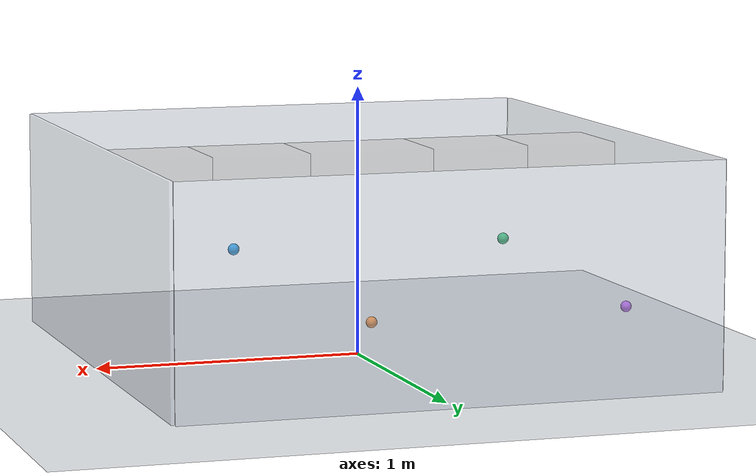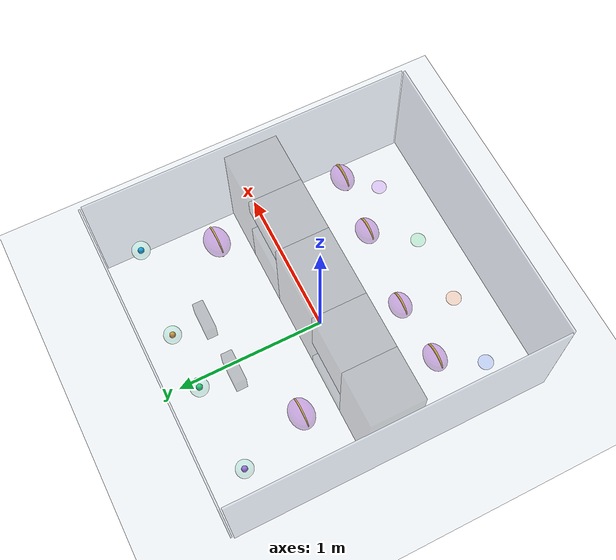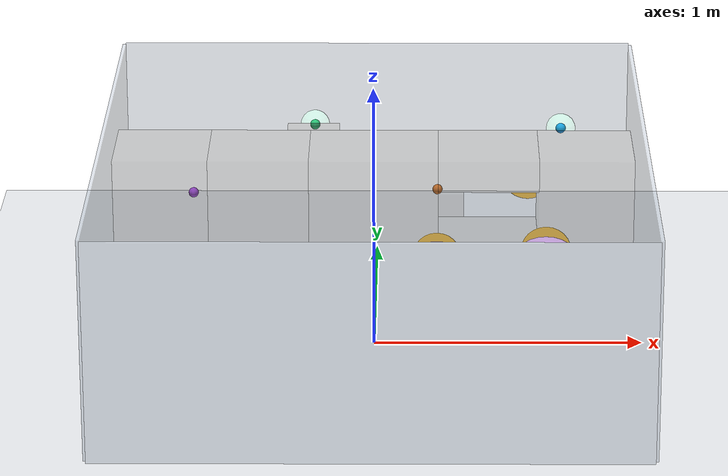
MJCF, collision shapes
<mujoco model="crazyflies3_hard_3d">
  <compiler angle="radian" autolimits="true" inertiafromgeom="false" meshdir="../../external/mujoco_menagerie/bitcraze_crazyflie_2/assets"/>

  <option timestep="0.025" gravity="0 0 -9.81" integrator="Euler" density="1.225" viscosity="1.8e-5"/>
  <statistic center="0 0 0.42" extent="1.55"/>

  <default>
    <geom contype="0" conaffinity="0"/>
    <site type="sphere" size="0.035"/>
    <default class="cf2">
      <default class="visual">
        <geom group="2" type="mesh" contype="0" conaffinity="0"/>
      </default>
      <default class="collision">
        <geom group="3" type="mesh"/>
      </default>
      <site group="5"/>
      <motor ctrllimited="true"/>
    </default>
  </default>

  <asset>
    <texture name="sky" type="skybox" builtin="flat" rgb1="1 1 1" width="64" height="64"/>
    <texture name="floor_tex" type="2d" builtin="checker" width="512" height="512"
      rgb1="0.965 0.970 0.978" rgb2="0.890 0.910 0.930"/>
    <material name="floor_mat" texture="floor_tex" texrepeat="9 9" texuniform="true" reflectance="0.06"/>
    <material name="wall_mat" rgba="0.72 0.77 0.84 0.38" specular="0.12" shininess="0.25"/>
    <material name="tunnel_wall_mat" rgba="0.16 0.18 0.20 0.28" specular="0.10" shininess="0.22"/>
    <material name="air_hazard_mat" rgba="0.52 0.10 0.74 0.34" specular="0.18" shininess="0.35"/>
    <material name="air_hazard_core_mat" rgba="0.54 0.08 0.74 0.72" specular="0.12" shininess="0.25"/>
    <material name="hazard_ring_mat" rgba="1.00 0.76 0.18 0.82" specular="0.16" shininess="0.24"/>
    <material name="goal1_mat" rgba="0.10 0.62 0.96 0.95" specular="0.20" shininess="0.40"/>
    <material name="goal2_mat" rgba="0.96 0.54 0.20 0.95" specular="0.20" shininess="0.40"/>
    <material name="goal3_mat" rgba="0.18 0.78 0.46 0.95" specular="0.20" shininess="0.40"/>
    <material name="goal4_mat" rgba="0.72 0.34 0.96 0.95" specular="0.20" shininess="0.40"/>
    <material name="goal_zone_mat" rgba="0.20 0.84 0.62 0.18"/>
    <material name="start1_mat" rgba="0.34 0.52 0.96 0.28"/>
    <material name="start2_mat" rgba="0.98 0.56 0.30 0.28"/>
    <material name="start3_mat" rgba="0.34 0.84 0.54 0.28"/>
    <material name="start4_mat" rgba="0.72 0.38 0.96 0.28"/>

    <material name="polished_plastic" rgba="0.631 0.659 0.678 1"/>
    <material name="polished_gold" rgba="0.969 0.878 0.6 1"/>
    <material name="medium_gloss_plastic" rgba="0.109 0.184 0.0 1"/>
    <material name="propeller_plastic" rgba="0.792 0.820 0.933 1"/>
    <material name="white" rgba="1 1 1 1"/>
    <material name="body_frame_plastic" rgba="0.102 0.102 0.102 1"/>
    <material name="burnished_chrome" rgba="0.898 0.898 0.898 1"/>

    <mesh file="cf2_0.obj"/>
    <mesh file="cf2_1.obj"/>
    <mesh file="cf2_2.obj"/>
    <mesh file="cf2_3.obj"/>
    <mesh file="cf2_4.obj"/>
    <mesh file="cf2_5.obj"/>
    <mesh file="cf2_6.obj"/>
    <mesh file="cf2_collision_0.obj"/>
    <mesh file="cf2_collision_1.obj"/>
    <mesh file="cf2_collision_2.obj"/>
    <mesh file="cf2_collision_3.obj"/>
    <mesh file="cf2_collision_4.obj"/>
    <mesh file="cf2_collision_5.obj"/>
    <mesh file="cf2_collision_6.obj"/>
    <mesh file="cf2_collision_7.obj"/>
    <mesh file="cf2_collision_8.obj"/>
    <mesh file="cf2_collision_9.obj"/>
    <mesh file="cf2_collision_10.obj"/>
    <mesh file="cf2_collision_11.obj"/>
    <mesh file="cf2_collision_12.obj"/>
    <mesh file="cf2_collision_13.obj"/>
    <mesh file="cf2_collision_14.obj"/>
    <mesh file="cf2_collision_15.obj"/>
    <mesh file="cf2_collision_16.obj"/>
    <mesh file="cf2_collision_17.obj"/>
    <mesh file="cf2_collision_18.obj"/>
    <mesh file="cf2_collision_19.obj"/>
    <mesh file="cf2_collision_20.obj"/>
    <mesh file="cf2_collision_21.obj"/>
    <mesh file="cf2_collision_22.obj"/>
    <mesh file="cf2_collision_23.obj"/>
    <mesh file="cf2_collision_24.obj"/>
    <mesh file="cf2_collision_25.obj"/>
    <mesh file="cf2_collision_26.obj"/>
    <mesh file="cf2_collision_27.obj"/>
    <mesh file="cf2_collision_28.obj"/>
    <mesh file="cf2_collision_29.obj"/>
    <mesh file="cf2_collision_30.obj"/>
    <mesh file="cf2_collision_31.obj"/>
  </asset>

  <worldbody>
    <light name="key" pos="-0.75 -1.10 1.35" diffuse="0.95 0.95 0.95" specular="0.22 0.22 0.22"/>
    <light name="fill" pos="0.85 0.90 0.95" diffuse="0.48 0.50 0.52" specular="0.06 0.06 0.06"/>

    <camera name="angled" mode="fixed" pos="1.15 -1.70 0.98" xyaxes="0.82 0.57 0 -0.30 0.43 0.85"/>
    <camera name="side" mode="fixed" pos="0 -1.85 0.58" xyaxes="1 0 0 0 0.30 0.95"/>
    <camera name="top_down" mode="fixed" pos="0 -0.01 2.10" xyaxes="1 0 0 0 1 0"/>

    <geom name="floor" type="plane" pos="0 0 0" size="1.55 1.65 0.015" material="floor_mat"/>
    <geom name="arena_back" type="box" pos="0 1.095 0.41" size="0.99 0.006 0.41" material="wall_mat"/>
    <geom name="arena_front" type="box" pos="0 -1.095 0.41" size="0.99 0.006 0.41" material="wall_mat"/>
    <geom name="arena_left" type="box" pos="-0.995 0 0.41" size="0.006 1.08 0.41" material="wall_mat"/>
    <geom name="arena_right" type="box" pos="0.995 0 0.41" size="0.006 1.08 0.41" material="wall_mat"/>

    <geom name="tunnel_wall_left" type="box" pos="-0.776924 0 0.43" size="0.173076 0.175 0.35" material="tunnel_wall_mat"/>
    <geom name="tunnel_wall_middle" type="box" pos="0 0 0.43" size="0.236152 0.175 0.35" material="tunnel_wall_mat"/>
    <geom name="tunnel_wall_right" type="box" pos="0.776924 0 0.43" size="0.173076 0.175 0.35" material="tunnel_wall_mat"/>
    <geom name="tunnel_wall_lower_left_bottom" type="box" pos="-0.42 0 0.123431" size="0.183848 0.175 0.043431" material="tunnel_wall_mat"/>
    <geom name="tunnel_wall_lower_left_top" type="box" pos="-0.42 0 0.586569" size="0.183848 0.175 0.193431" material="tunnel_wall_mat"/>
    <geom name="tunnel_wall_upper_right_bottom" type="box" pos="0.42 0 0.258431" size="0.183848 0.175 0.178431" material="tunnel_wall_mat"/>
    <geom name="tunnel_wall_upper_right_top" type="box" pos="0.42 0 0.721569" size="0.183848 0.175 0.058431" material="tunnel_wall_mat"/>
    <geom name="goal_turn_wall_d2" type="box" pos="0.24 0.68 0.28" size="0.10 0.035 0.07" material="tunnel_wall_mat"/>
    <geom name="goal_turn_wall_d3" type="box" pos="-0.24 0.68 0.55" size="0.10 0.035 0.07" material="tunnel_wall_mat"/>

    <geom name="air_hazard_low_outer_approach" type="ellipsoid" pos="-0.62 -0.47 0.28" size="0.095 0.070 0.055" material="air_hazard_mat"/>
    <geom name="air_hazard_low_core_approach" type="ellipsoid" pos="-0.62 -0.47 0.28" size="0.052 0.039 0.030" material="air_hazard_core_mat"/>
    <geom name="air_hazard_low_ring_approach" type="cylinder" pos="-0.62 -0.47 0.28" size="0.090 0.0027" euler="1.5707963268 0 0" material="hazard_ring_mat"/>
    <geom name="air_hazard_low_outer_gate" type="ellipsoid" pos="-0.23 -0.44 0.31" size="0.090 0.070 0.055" material="air_hazard_mat"/>
    <geom name="air_hazard_low_core_gate" type="ellipsoid" pos="-0.23 -0.44 0.31" size="0.050 0.039 0.030" material="air_hazard_core_mat"/>
    <geom name="air_hazard_low_ring_gate" type="cylinder" pos="-0.23 -0.44 0.31" size="0.085 0.0027" euler="1.5707963268 0 0" material="hazard_ring_mat"/>
    <geom name="air_hazard_high_outer_gate" type="ellipsoid" pos="0.23 -0.44 0.52" size="0.090 0.070 0.055" material="air_hazard_mat"/>
    <geom name="air_hazard_high_core_gate" type="ellipsoid" pos="0.23 -0.44 0.52" size="0.050 0.039 0.030" material="air_hazard_core_mat"/>
    <geom name="air_hazard_high_ring_gate" type="cylinder" pos="0.23 -0.44 0.52" size="0.085 0.0027" euler="1.5707963268 0 0" material="hazard_ring_mat"/>
    <geom name="air_hazard_high_outer_approach" type="ellipsoid" pos="0.62 -0.47 0.55" size="0.095 0.070 0.055" material="air_hazard_mat"/>
    <geom name="air_hazard_high_core_approach" type="ellipsoid" pos="0.62 -0.47 0.55" size="0.052 0.039 0.030" material="air_hazard_core_mat"/>
    <geom name="air_hazard_high_ring_approach" type="cylinder" pos="0.62 -0.47 0.55" size="0.090 0.0027" euler="1.5707963268 0 0" material="hazard_ring_mat"/>
    <geom name="air_hazard_low_outer_exit" type="ellipsoid" pos="-0.58 0.42 0.31" size="0.105 0.080 0.060" material="air_hazard_mat"/>
    <geom name="air_hazard_low_core_exit" type="ellipsoid" pos="-0.58 0.42 0.31" size="0.058 0.044 0.033" material="air_hazard_core_mat"/>
    <geom name="air_hazard_low_ring_exit" type="cylinder" pos="-0.58 0.42 0.31" size="0.100 0.0027" euler="1.5707963268 0 0" material="hazard_ring_mat"/>
    <geom name="air_hazard_high_outer_exit" type="ellipsoid" pos="0.58 0.42 0.52" size="0.105 0.080 0.060" material="air_hazard_mat"/>
    <geom name="air_hazard_high_core_exit" type="ellipsoid" pos="0.58 0.42 0.52" size="0.058 0.044 0.033" material="air_hazard_core_mat"/>
    <geom name="air_hazard_high_ring_exit" type="cylinder" pos="0.58 0.42 0.52" size="0.100 0.0027" euler="1.5707963268 0 0" material="hazard_ring_mat"/>

    <geom name="start_d1" type="cylinder" pos="-0.72 -0.82 0.0021" size="0.051 0.0021" material="start1_mat"/>
    <geom name="start_d2" type="cylinder" pos="-0.24 -0.86 0.0021" size="0.051 0.0021" material="start2_mat"/>
    <geom name="start_d3" type="cylinder" pos="0.24 -0.86 0.0021" size="0.051 0.0021" material="start3_mat"/>
    <geom name="start_d4" type="cylinder" pos="0.72 -0.82 0.0021" size="0.051 0.0021" material="start4_mat"/>

    <geom name="goal_d1_zone" type="ellipsoid" pos="0.72 0.86 0.55" size="0.057 0.057 0.057" material="goal_zone_mat"/>
    <geom name="goal_d1_core" type="sphere" pos="0.72 0.86 0.55" size="0.0195" material="goal1_mat"/>
    <geom name="goal_d2_zone" type="ellipsoid" pos="0.24 0.90 0.28" size="0.057 0.057 0.057" material="goal_zone_mat"/>
    <geom name="goal_d2_core" type="sphere" pos="0.24 0.90 0.28" size="0.0195" material="goal2_mat"/>
    <geom name="goal_d3_zone" type="ellipsoid" pos="-0.24 0.90 0.55" size="0.057 0.057 0.057" material="goal_zone_mat"/>
    <geom name="goal_d3_core" type="sphere" pos="-0.24 0.90 0.55" size="0.0195" material="goal3_mat"/>
    <geom name="goal_d4_zone" type="ellipsoid" pos="-0.72 0.86 0.28" size="0.057 0.057 0.057" material="goal_zone_mat"/>
    <geom name="goal_d4_core" type="sphere" pos="-0.72 0.86 0.28" size="0.0195" material="goal4_mat"/>

    <body name="cf1" pos="-0.72 -0.82 0.14" childclass="cf2">
      <freejoint name="cf1_free"/>
      <inertial pos="0 0 0" mass="0.027" diaginertia="2.3951e-5 2.3951e-5 3.2347e-5"/>
      <geom mesh="cf2_0" material="propeller_plastic" class="visual"/><geom mesh="cf2_1" material="medium_gloss_plastic" class="visual"/><geom mesh="cf2_2" material="polished_gold" class="visual"/><geom mesh="cf2_3" material="polished_plastic" class="visual"/><geom mesh="cf2_4" material="burnished_chrome" class="visual"/><geom mesh="cf2_5" material="body_frame_plastic" class="visual"/><geom mesh="cf2_6" material="white" class="visual"/>
      <geom mesh="cf2_collision_0" class="collision"/><geom mesh="cf2_collision_1" class="collision"/><geom mesh="cf2_collision_2" class="collision"/><geom mesh="cf2_collision_3" class="collision"/><geom mesh="cf2_collision_4" class="collision"/><geom mesh="cf2_collision_5" class="collision"/><geom mesh="cf2_collision_6" class="collision"/><geom mesh="cf2_collision_7" class="collision"/><geom mesh="cf2_collision_8" class="collision"/><geom mesh="cf2_collision_9" class="collision"/><geom mesh="cf2_collision_10" class="collision"/><geom mesh="cf2_collision_11" class="collision"/><geom mesh="cf2_collision_12" class="collision"/><geom mesh="cf2_collision_13" class="collision"/><geom mesh="cf2_collision_14" class="collision"/><geom mesh="cf2_collision_15" class="collision"/><geom mesh="cf2_collision_16" class="collision"/><geom mesh="cf2_collision_17" class="collision"/><geom mesh="cf2_collision_18" class="collision"/><geom mesh="cf2_collision_19" class="collision"/><geom mesh="cf2_collision_20" class="collision"/><geom mesh="cf2_collision_21" class="collision"/><geom mesh="cf2_collision_22" class="collision"/><geom mesh="cf2_collision_23" class="collision"/><geom mesh="cf2_collision_24" class="collision"/><geom mesh="cf2_collision_25" class="collision"/><geom mesh="cf2_collision_26" class="collision"/><geom mesh="cf2_collision_27" class="collision"/><geom mesh="cf2_collision_28" class="collision"/><geom mesh="cf2_collision_29" class="collision"/><geom mesh="cf2_collision_30" class="collision"/><geom mesh="cf2_collision_31" class="collision"/>
      <site name="cf1_imu"/><site name="cf1_fl_thruster" pos="-0.0325 0.0325 0.005"/><site name="cf1_fr_thruster" pos="0.0325 0.0325 0.005"/><site name="cf1_rr_thruster" pos="0.0325 -0.0325 0.005"/><site name="cf1_rl_thruster" pos="-0.0325 -0.0325 0.005"/>
    </body>
    <body name="cf2" pos="-0.24 -0.86 0.18" childclass="cf2">
      <freejoint name="cf2_free"/>
      <inertial pos="0 0 0" mass="0.027" diaginertia="2.3951e-5 2.3951e-5 3.2347e-5"/>
      <geom mesh="cf2_0" material="propeller_plastic" class="visual"/><geom mesh="cf2_1" material="medium_gloss_plastic" class="visual"/><geom mesh="cf2_2" material="polished_gold" class="visual"/><geom mesh="cf2_3" material="polished_plastic" class="visual"/><geom mesh="cf2_4" material="burnished_chrome" class="visual"/><geom mesh="cf2_5" material="body_frame_plastic" class="visual"/><geom mesh="cf2_6" material="white" class="visual"/>
      <geom mesh="cf2_collision_0" class="collision"/><geom mesh="cf2_collision_1" class="collision"/><geom mesh="cf2_collision_2" class="collision"/><geom mesh="cf2_collision_3" class="collision"/><geom mesh="cf2_collision_4" class="collision"/><geom mesh="cf2_collision_5" class="collision"/><geom mesh="cf2_collision_6" class="collision"/><geom mesh="cf2_collision_7" class="collision"/><geom mesh="cf2_collision_8" class="collision"/><geom mesh="cf2_collision_9" class="collision"/><geom mesh="cf2_collision_10" class="collision"/><geom mesh="cf2_collision_11" class="collision"/><geom mesh="cf2_collision_12" class="collision"/><geom mesh="cf2_collision_13" class="collision"/><geom mesh="cf2_collision_14" class="collision"/><geom mesh="cf2_collision_15" class="collision"/><geom mesh="cf2_collision_16" class="collision"/><geom mesh="cf2_collision_17" class="collision"/><geom mesh="cf2_collision_18" class="collision"/><geom mesh="cf2_collision_19" class="collision"/><geom mesh="cf2_collision_20" class="collision"/><geom mesh="cf2_collision_21" class="collision"/><geom mesh="cf2_collision_22" class="collision"/><geom mesh="cf2_collision_23" class="collision"/><geom mesh="cf2_collision_24" class="collision"/><geom mesh="cf2_collision_25" class="collision"/><geom mesh="cf2_collision_26" class="collision"/><geom mesh="cf2_collision_27" class="collision"/><geom mesh="cf2_collision_28" class="collision"/><geom mesh="cf2_collision_29" class="collision"/><geom mesh="cf2_collision_30" class="collision"/><geom mesh="cf2_collision_31" class="collision"/>
      <site name="cf2_imu"/><site name="cf2_fl_thruster" pos="-0.0325 0.0325 0.005"/><site name="cf2_fr_thruster" pos="0.0325 0.0325 0.005"/><site name="cf2_rr_thruster" pos="0.0325 -0.0325 0.005"/><site name="cf2_rl_thruster" pos="-0.0325 -0.0325 0.005"/>
    </body>
    <body name="cf3" pos="0.24 -0.86 0.16" childclass="cf2">
      <freejoint name="cf3_free"/>
      <inertial pos="0 0 0" mass="0.027" diaginertia="2.3951e-5 2.3951e-5 3.2347e-5"/>
      <geom mesh="cf2_0" material="propeller_plastic" class="visual"/><geom mesh="cf2_1" material="medium_gloss_plastic" class="visual"/><geom mesh="cf2_2" material="polished_gold" class="visual"/><geom mesh="cf2_3" material="polished_plastic" class="visual"/><geom mesh="cf2_4" material="burnished_chrome" class="visual"/><geom mesh="cf2_5" material="body_frame_plastic" class="visual"/><geom mesh="cf2_6" material="white" class="visual"/>
      <geom mesh="cf2_collision_0" class="collision"/><geom mesh="cf2_collision_1" class="collision"/><geom mesh="cf2_collision_2" class="collision"/><geom mesh="cf2_collision_3" class="collision"/><geom mesh="cf2_collision_4" class="collision"/><geom mesh="cf2_collision_5" class="collision"/><geom mesh="cf2_collision_6" class="collision"/><geom mesh="cf2_collision_7" class="collision"/><geom mesh="cf2_collision_8" class="collision"/><geom mesh="cf2_collision_9" class="collision"/><geom mesh="cf2_collision_10" class="collision"/><geom mesh="cf2_collision_11" class="collision"/><geom mesh="cf2_collision_12" class="collision"/><geom mesh="cf2_collision_13" class="collision"/><geom mesh="cf2_collision_14" class="collision"/><geom mesh="cf2_collision_15" class="collision"/><geom mesh="cf2_collision_16" class="collision"/><geom mesh="cf2_collision_17" class="collision"/><geom mesh="cf2_collision_18" class="collision"/><geom mesh="cf2_collision_19" class="collision"/><geom mesh="cf2_collision_20" class="collision"/><geom mesh="cf2_collision_21" class="collision"/><geom mesh="cf2_collision_22" class="collision"/><geom mesh="cf2_collision_23" class="collision"/><geom mesh="cf2_collision_24" class="collision"/><geom mesh="cf2_collision_25" class="collision"/><geom mesh="cf2_collision_26" class="collision"/><geom mesh="cf2_collision_27" class="collision"/><geom mesh="cf2_collision_28" class="collision"/><geom mesh="cf2_collision_29" class="collision"/><geom mesh="cf2_collision_30" class="collision"/><geom mesh="cf2_collision_31" class="collision"/>
      <site name="cf3_imu"/><site name="cf3_fl_thruster" pos="-0.0325 0.0325 0.005"/><site name="cf3_fr_thruster" pos="0.0325 0.0325 0.005"/><site name="cf3_rr_thruster" pos="0.0325 -0.0325 0.005"/><site name="cf3_rl_thruster" pos="-0.0325 -0.0325 0.005"/>
    </body>
    <body name="cf4" pos="0.72 -0.82 0.20" childclass="cf2">
      <freejoint name="cf4_free"/>
      <inertial pos="0 0 0" mass="0.027" diaginertia="2.3951e-5 2.3951e-5 3.2347e-5"/>
      <geom mesh="cf2_0" material="propeller_plastic" class="visual"/><geom mesh="cf2_1" material="medium_gloss_plastic" class="visual"/><geom mesh="cf2_2" material="polished_gold" class="visual"/><geom mesh="cf2_3" material="polished_plastic" class="visual"/><geom mesh="cf2_4" material="burnished_chrome" class="visual"/><geom mesh="cf2_5" material="body_frame_plastic" class="visual"/><geom mesh="cf2_6" material="white" class="visual"/>
      <geom mesh="cf2_collision_0" class="collision"/><geom mesh="cf2_collision_1" class="collision"/><geom mesh="cf2_collision_2" class="collision"/><geom mesh="cf2_collision_3" class="collision"/><geom mesh="cf2_collision_4" class="collision"/><geom mesh="cf2_collision_5" class="collision"/><geom mesh="cf2_collision_6" class="collision"/><geom mesh="cf2_collision_7" class="collision"/><geom mesh="cf2_collision_8" class="collision"/><geom mesh="cf2_collision_9" class="collision"/><geom mesh="cf2_collision_10" class="collision"/><geom mesh="cf2_collision_11" class="collision"/><geom mesh="cf2_collision_12" class="collision"/><geom mesh="cf2_collision_13" class="collision"/><geom mesh="cf2_collision_14" class="collision"/><geom mesh="cf2_collision_15" class="collision"/><geom mesh="cf2_collision_16" class="collision"/><geom mesh="cf2_collision_17" class="collision"/><geom mesh="cf2_collision_18" class="collision"/><geom mesh="cf2_collision_19" class="collision"/><geom mesh="cf2_collision_20" class="collision"/><geom mesh="cf2_collision_21" class="collision"/><geom mesh="cf2_collision_22" class="collision"/><geom mesh="cf2_collision_23" class="collision"/><geom mesh="cf2_collision_24" class="collision"/><geom mesh="cf2_collision_25" class="collision"/><geom mesh="cf2_collision_26" class="collision"/><geom mesh="cf2_collision_27" class="collision"/><geom mesh="cf2_collision_28" class="collision"/><geom mesh="cf2_collision_29" class="collision"/><geom mesh="cf2_collision_30" class="collision"/><geom mesh="cf2_collision_31" class="collision"/>
      <site name="cf4_imu"/><site name="cf4_fl_thruster" pos="-0.0325 0.0325 0.005"/><site name="cf4_fr_thruster" pos="0.0325 0.0325 0.005"/><site name="cf4_rr_thruster" pos="0.0325 -0.0325 0.005"/><site name="cf4_rl_thruster" pos="-0.0325 -0.0325 0.005"/>
    </body>
  </worldbody>

  <actuator>
    <motor class="cf2" ctrlrange="0 0.0875" gear="0 0 1 0 0 0.000057" site="cf1_fl_thruster" name="cf1_front_left"/>
    <motor class="cf2" ctrlrange="0 0.0875" gear="0 0 1 0 0 -0.000057" site="cf1_fr_thruster" name="cf1_front_right"/>
    <motor class="cf2" ctrlrange="0 0.0875" gear="0 0 1 0 0 0.000057" site="cf1_rr_thruster" name="cf1_rear_right"/>
    <motor class="cf2" ctrlrange="0 0.0875" gear="0 0 1 0 0 -0.000057" site="cf1_rl_thruster" name="cf1_rear_left"/>
    <motor class="cf2" ctrlrange="0 0.0875" gear="0 0 1 0 0 0.000057" site="cf2_fl_thruster" name="cf2_front_left"/>
    <motor class="cf2" ctrlrange="0 0.0875" gear="0 0 1 0 0 -0.000057" site="cf2_fr_thruster" name="cf2_front_right"/>
    <motor class="cf2" ctrlrange="0 0.0875" gear="0 0 1 0 0 0.000057" site="cf2_rr_thruster" name="cf2_rear_right"/>
    <motor class="cf2" ctrlrange="0 0.0875" gear="0 0 1 0 0 -0.000057" site="cf2_rl_thruster" name="cf2_rear_left"/>
    <motor class="cf2" ctrlrange="0 0.0875" gear="0 0 1 0 0 0.000057" site="cf3_fl_thruster" name="cf3_front_left"/>
    <motor class="cf2" ctrlrange="0 0.0875" gear="0 0 1 0 0 -0.000057" site="cf3_fr_thruster" name="cf3_front_right"/>
    <motor class="cf2" ctrlrange="0 0.0875" gear="0 0 1 0 0 0.000057" site="cf3_rr_thruster" name="cf3_rear_right"/>
    <motor class="cf2" ctrlrange="0 0.0875" gear="0 0 1 0 0 -0.000057" site="cf3_rl_thruster" name="cf3_rear_left"/>
    <motor class="cf2" ctrlrange="0 0.0875" gear="0 0 1 0 0 0.000057" site="cf4_fl_thruster" name="cf4_front_left"/>
    <motor class="cf2" ctrlrange="0 0.0875" gear="0 0 1 0 0 -0.000057" site="cf4_fr_thruster" name="cf4_front_right"/>
    <motor class="cf2" ctrlrange="0 0.0875" gear="0 0 1 0 0 0.000057" site="cf4_rr_thruster" name="cf4_rear_right"/>
    <motor class="cf2" ctrlrange="0 0.0875" gear="0 0 1 0 0 -0.000057" site="cf4_rl_thruster" name="cf4_rear_left"/>
  </actuator>
</mujoco>
